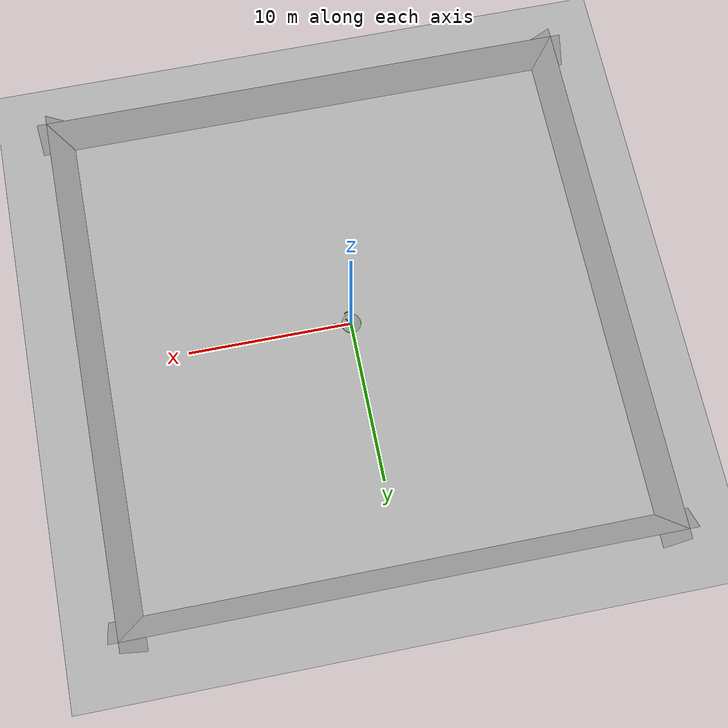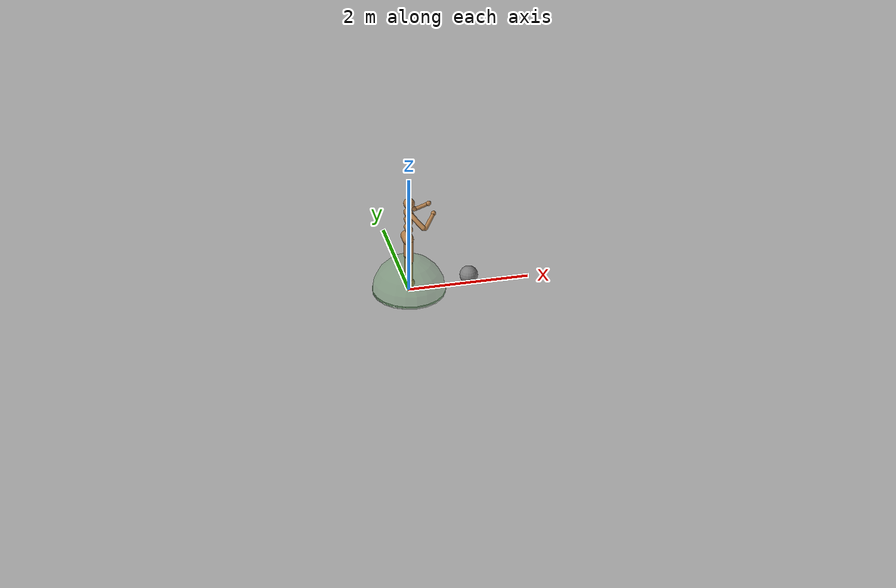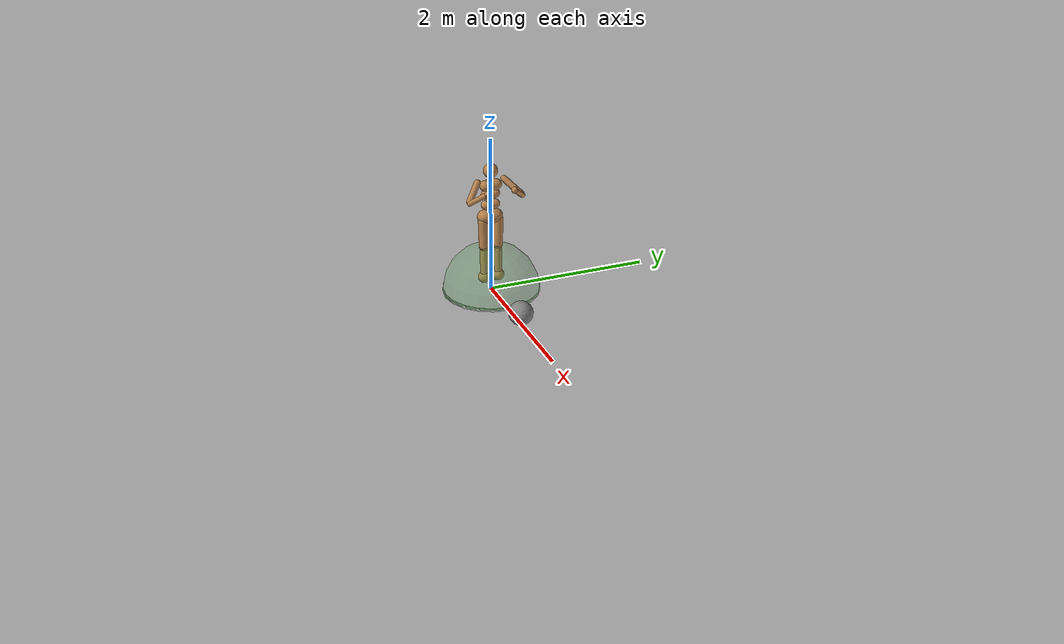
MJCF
<mujoco model="humanoid fetch">
  <option timestep="0.004" iterations="1" ls_iterations="5" solver="Newton">
    <flag eulerdamp="disable"/>
  </option>

  <statistic center="0 0 0.1" extent="10.0" meansize="0.04"/>

  <visual>
    <rgba force="1 0 0 1" haze = "0.71 0.71 0.71 0.51" fog="0.71 0.71 0.71 1"/>
    <global azimuth="140" elevation="-20" offwidth="1280" offheight="720"/>
  </visual>

  <asset>
    <texture type="skybox" builtin="gradient" rgb1="0.71 0.71 0.71" rgb2="0.71 0.71 0.71" width="800" height="800"/>
    <texture name="grey_squares" builtin="checker" height="800" width="800" rgb1="0.71 0.71 0.71" rgb2="0.71 0.71 0.71" type="2d" mark="edge" markrgb="1 1 1"/>
    <texture name="football" builtin="checker" mark="cross" width="151" height="151" rgb1="0.1 0.1 0.1" rgb2="0.9 0.9 0.9" markrgb="1 1 1"/>

    <material name="body" rgba=".7 .5 .3 1" specular="0.9" shininess="0.8"/>
    <material name="floor" reflectance="0.2" texrepeat="1 1" texuniform="true" texture="grey_squares"/>
    <material name="ball" texture="football" />
    <material name="wall" rgba="0.2 0.2 0.2 .1"/>
  </asset>

  <default>
    <geom conaffinity="0" condim="3" contype="0"/>
    <joint armature="1" damping="1" limited="true"/>
    <motor ctrllimited="true" ctrlrange="-.4 .4"/>
    <default class="humanoid">
      <geom type="capsule" material="body"/>
    </default>
    <default class="wall">
        <geom type="plane" material="wall"/>
    </default>
  </default>

  <worldbody>
    <!-- Arena walls + floor -->
    <geom name="floor" pos="0 0 0" size="100 100 0.010" type="plane" material="floor"/>
    <geom name="wall_px" class="wall" pos="-15.7 0 0.7" zaxis="1 0 1" size="1 17 1.5"/>
    <geom name="wall_py" class="wall" pos="0 -15.7 0.7" zaxis="0 1 1" size="17 1 1.5"/>
    <geom name="wall_nx" class="wall" pos="15.7 0 0.7" zaxis="-1 0 1" size="1 17 1.5"/>
    <geom name="wall_ny" class="wall" pos="0 15.7 0.7" zaxis="0 -1 1" size="17 1 1.5"/>

    <!-- Target to fetch the ball too -->
    <site name="target" type="cylinder" size="0.6 0.01" pos="0 0 0.02" rgba="0.3 0.6 0.3 0.61"/>
    <site name="target_threshold" type="sphere" size="0.60" pos="0 0 0.00" rgba="0.3 0.6 0.3 0.29"/>

    <camera name="overhead_camera" pos="-15.151 27.731 10.860" xyaxes="-0.857 -0.515 -0.000 0.245 -0.408 0.880"/>

    <!-- Humanoid -->
    <body name="humanoid" childclass="humanoid" pos="0 0 1.40">
      <light name="tracking_light" pos="0 0 7" dir="0 0 -1" specular="0.8 0.8 0.8" mode="trackcom"/>
      <camera name="cam_default" mode="trackcom" pos="3.659 -8.426 1.448" xyaxes="0.932 0.363 0.000 -0.075 0.193 0.978"/>
      <site name="humanoid" size="0.01" pos="-0 0 -0"/>
      <joint name="humanoid_root" type="free" armature="0" damping="0" limited="false" pos="0 0 0" stiffness="0"/>
      <geom name="humanoid_torso" fromto="0 -.07 0 0 .07 0" size="0.07" type="capsule"/>
      <geom name="humanoid_head" pos="0 0 .19" size=".09" type="sphere"/>
      <geom name="humanoid_uwaist" fromto="-.01 -.06 -.12 -.01 .06 -.12" size="0.06" type="capsule"/>
      <body name="humanoid_lwaist" pos="-.01 0 -0.260" quat="1.000 0 -0.002 0">
        <geom name="humanoid_lwaist" fromto="0 -.06 0 0 .06 0" size="0.06" type="capsule"/>
        <joint name="humanoid_abdomen_z" armature="0.02" axis="0 0 1" damping="5" pos="0 0 0.065" range="-45 45" stiffness="20" type="hinge"/>
        <joint name="humanoid_abdomen_y" armature="0.02" axis="0 1 0" damping="5" pos="0 0 0.065" range="-75 30" stiffness="10" type="hinge"/>
        <body name="humanoid_pelvis" pos="0 0 -0.165" quat="1.000 0 -0.002 0">
          <joint name="humanoid_abdomen_x" armature="0.02" axis="1 0 0" damping="5" pos="0 0 0.1" range="-35 35" stiffness="10" type="hinge"/>
          <geom name="humanoid_butt" fromto="-.02 -.07 0 -.02 .07 0" size="0.09" type="capsule"/>
          <body name="humanoid_right_thigh" pos="0 -0.1 -0.04">
            <joint name="humanoid_right_hip_x" armature="0.01" axis="1 0 0" damping="5" pos="0 0 0" range="-25 5" stiffness="10" type="hinge"/>
            <joint name="humanoid_right_hip_z" armature="0.01" axis="0 0 1" damping="5" pos="0 0 0" range="-60 35" stiffness="10" type="hinge"/>
            <joint name="humanoid_right_hip_y" armature="0.0080" axis="0 1 0" damping="5" pos="0 0 0" range="-110 20" stiffness="20" type="hinge"/>
            <geom name="humanoid_right_thigh" fromto="0 0 0 0 0.01 -.34" size="0.06" type="capsule"/>
            <body name="humanoid_right_shin" pos="0 0.01 -0.403">
              <joint name="humanoid_right_knee" armature="0.0060" axis="0 -1 0" pos="0 0 .02" range="-160 -2" type="hinge"/>
              <geom name="humanoid_right_shin" fromto="0 0 0 0 0 -.3" size="0.049" type="capsule"/>
              <body name="humanoid_right_foot" pos="0 0 -0.45">
                <geom name="humanoid_right_foot" pos="0 0 0.1" size="0.075" type="sphere"/>
              </body>
            </body>
          </body>
          <body name="humanoid_left_thigh" pos="0 0.1 -0.04">
            <joint name="humanoid_left_hip_x" armature="0.01" axis="-1 0 0" damping="5" pos="0 0 0" range="-25 5" stiffness="10" type="hinge"/>
            <joint name="humanoid_left_hip_z" armature="0.01" axis="0 0 -1" damping="5" pos="0 0 0" range="-60 35" stiffness="10" type="hinge"/>
            <joint name="humanoid_left_hip_y" armature="0.01" axis="0 1 0" damping="5" pos="0 0 0" range="-110 20" stiffness="20" type="hinge"/>
            <geom name="humanoid_left_thigh" fromto="0 0 0 0 -0.01 -.34" size="0.06" type="capsule"/>
            <body name="humanoid_left_shin" pos="0 -0.01 -0.403">
              <joint name="humanoid_left_knee" armature="0.0060" axis="0 -1 0" pos="0 0 .02" range="-160 -2" stiffness="1" type="hinge"/>
              <geom name="humanoid_left_shin" fromto="0 0 0 0 0 -.3" size="0.049" type="capsule"/>
              <body name="humanoid_left_foot" pos="0 0 -0.45">
                <geom name="humanoid_left_foot" type="sphere" size="0.075" pos="0 0 0.1"/>
              </body>
            </body>
          </body>
        </body>
      </body>
      <body name="humanoid_right_upper_arm" pos="0 -0.17 0.06">
        <joint name="humanoid_right_shoulder1" armature="0.0068" axis="2 1 1" pos="0 0 0" range="-85 60" stiffness="1" type="hinge"/>
        <joint name="humanoid_right_shoulder2" armature="0.0051" axis="0 -1 1" pos="0 0 0" range="-85 60" stiffness="1" type="hinge"/>
        <geom name="humanoid_right_uarm" fromto="0 0 0 .16 -.16 -.16" size="0.04 0.16" type="capsule"/>
        <body name="humanoid_right_lower_arm" pos=".18 -.18 -.18">
          <joint name="humanoid_right_elbow" armature="0.0028" axis="0 -1 1" pos="0 0 0" range="-90 50" stiffness="0" type="hinge"/>
          <geom name="humanoid_right_larm" fromto="0.01 0.01 0.01 .17 .17 .17" size="0.031" type="capsule"/>
          <geom name="humanoid_right_hand" pos=".18 .18 .18" size="0.04" type="sphere"/>
        </body>
      </body>
      <body name="humanoid_left_upper_arm" pos="0 0.17 0.06">
        <joint name="humanoid_left_shoulder1" armature="0.0068" axis="2 -1 1" pos="0 0 0" range="-60 85" stiffness="1" type="hinge"/>
        <joint name="humanoid_left_shoulder2" armature="0.0051" axis="0 1 1" pos="0 0 0" range="-60 85" stiffness="1" type="hinge"/>
        <geom name="humanoid_left_uarm" fromto="0 0 0 .16 .16 -.16" size="0.04 0.16" type="capsule"/>
        <body name="humanoid_left_lower_arm" pos=".18 .18 -.18">
          <joint name="humanoid_left_elbow" armature="0.0028" axis="0 -1 -1" pos="0 0 0" range="-90 50" stiffness="0" type="hinge"/>
          <geom name="humanoid_left_larm" fromto="0.01 -0.01 0.01 .17 -.17 .17" size="0.031" type="capsule"/>
          <geom name="humanoid_left_hand" pos=".18 -.18 .18" size="0.04" type="sphere"/>
        </body>
      </body>
    </body>

    <!-- Ball -->
    <body name="ball" pos="1 0 0.150">
      <freejoint name="ball_root"/>
      <geom name="ball" priority="1" size=".15" mass="0.40" material="ball"/>
      <site name="ball" size="0.01" pos="0 0 0.00"/>
    </body>
  </worldbody>

  <contact>
    <pair geom1="floor" geom2="humanoid_right_foot" friction="1 1 0.1 0.1 0.1"/>
    <pair geom1="floor" geom2="humanoid_right_shin" friction="1 1 0.1 0.1 0.1"/>
    <pair geom1="floor" geom2="humanoid_left_foot" friction="1 1 0.1 0.1 0.1"/>
    <pair geom1="floor" geom2="humanoid_left_shin" friction="1 1 0.1 0.1 0.1"/>
    <pair geom1="floor" geom2="ball" condim="6" friction="0.7 0.7 0.005 0.005 0.005" solref="-5000 -30"/>

    <pair geom1="ball" geom2="humanoid_left_foot" condim="6" friction="0.7 0.7 0.005 0.005 0.005" solref="-5000 -30"/>
    <pair geom1="ball" geom2="humanoid_left_shin" condim="6" friction="0.7 0.7 0.005 0.005 0.005" solref="-5000 -30"/>
    <pair geom1="ball" geom2="humanoid_right_foot" condim="6" friction="0.7 0.7 0.005 0.005 0.005" solref="-5000 -30"/>
    <pair geom1="ball" geom2="humanoid_right_shin" condim="6" friction="0.7 0.7 0.005 0.005 0.005" solref="-5000 -30"/>

    <pair geom1="ball" geom2="wall_nx" condim="6" friction="0.7 0.7 0.005 0.005 0.005" solref="-5000 -80"/>
    <pair geom1="ball" geom2="wall_ny" condim="6" friction="0.7 0.7 0.005 0.005 0.005" solref="-5000 -80"/>
    <pair geom1="ball" geom2="wall_px" condim="6" friction="0.7 0.7 0.005 0.005 0.005" solref="-5000 -80"/>
    <pair geom1="ball" geom2="wall_py" condim="6" friction="0.7 0.7 0.005 0.005 0.005" solref="-5000 -80"/>
  </contact>

  <actuator>
    <motor gear="100" joint="humanoid_abdomen_y" name="humanoid_abdomen_y"/>
    <motor gear="100" joint="humanoid_abdomen_z" name="humanoid_abdomen_z"/>
    <motor gear="100" joint="humanoid_abdomen_x" name="humanoid_abdomen_x"/>
    <motor gear="100" joint="humanoid_right_hip_x" name="humanoid_right_hip_x"/>
    <motor gear="100" joint="humanoid_right_hip_z" name="humanoid_right_hip_z"/>
    <motor gear="300" joint="humanoid_right_hip_y" name="humanoid_right_hip_y"/>
    <motor gear="200" joint="humanoid_right_knee" name="humanoid_right_knee"/>
    <motor gear="100" joint="humanoid_left_hip_x" name="humanoid_left_hip_x"/>
    <motor gear="100" joint="humanoid_left_hip_z" name="humanoid_left_hip_z"/>
    <motor gear="300" joint="humanoid_left_hip_y" name="humanoid_left_hip_y"/>
    <motor gear="200" joint="humanoid_left_knee" name="humanoid_left_knee"/>
    <motor gear="25" joint="humanoid_right_shoulder1" name="humanoid_right_shoulder1"/>
    <motor gear="25" joint="humanoid_right_shoulder2" name="humanoid_right_shoulder2"/>
    <motor gear="25" joint="humanoid_right_elbow" name="humanoid_right_elbow"/>
    <motor gear="25" joint="humanoid_left_shoulder1" name="humanoid_left_shoulder1"/>
    <motor gear="25" joint="humanoid_left_shoulder2" name="humanoid_left_shoulder2"/>
    <motor gear="25" joint="humanoid_left_elbow" name="humanoid_left_elbow"/>
  </actuator>
</mujoco>
